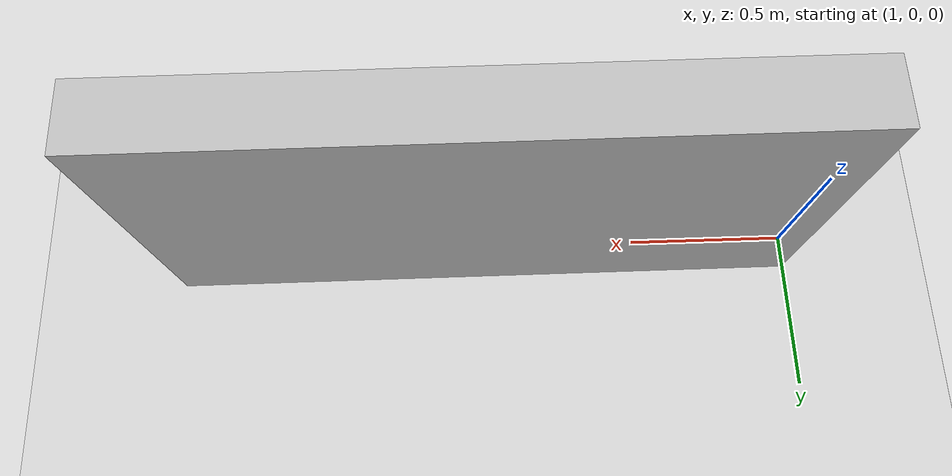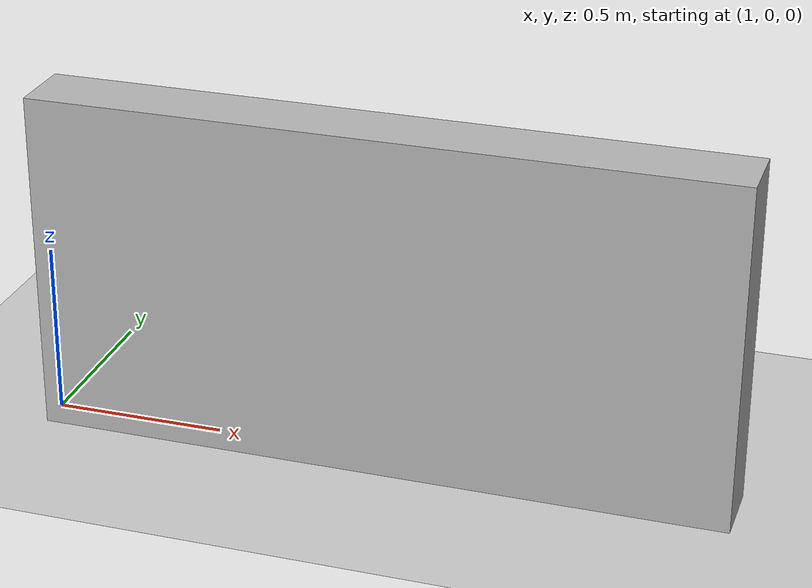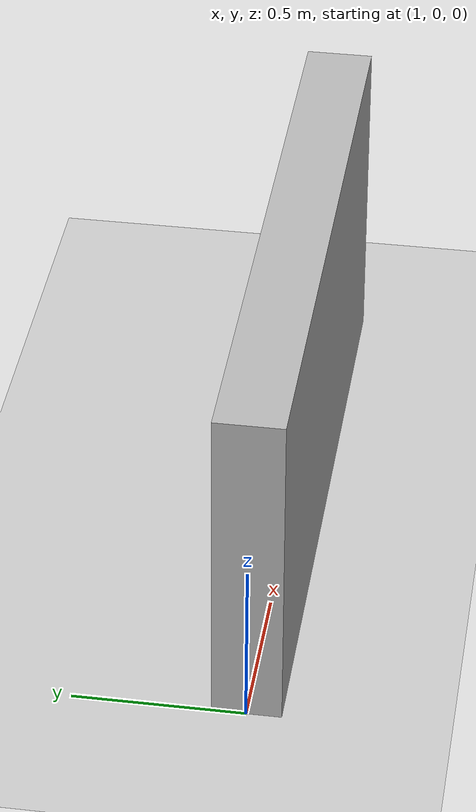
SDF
<sdf version="1.6">
  <world name="default">

    <include>
      <uri>model://ground_plane</uri>
    </include>

    <include>
      <uri>model://sun</uri>
    </include>

    <!-- WALL -->
    <model name="wall1">
      <static>true</static>
      <link name="link">
        <collision name="collision">
          <geometry>
            <box>
              <size>2 0.2 1</size>
            </box>
          </geometry>
        </collision>
        <visual name="visual">
          <geometry>
            <box>
              <size>2 0.2 1</size>
            </box>
          </geometry>
        </visual>
      </link>
      <pose>2 0 0.5 0 0 0</pose>
    </model>

  </world>
</sdf>
